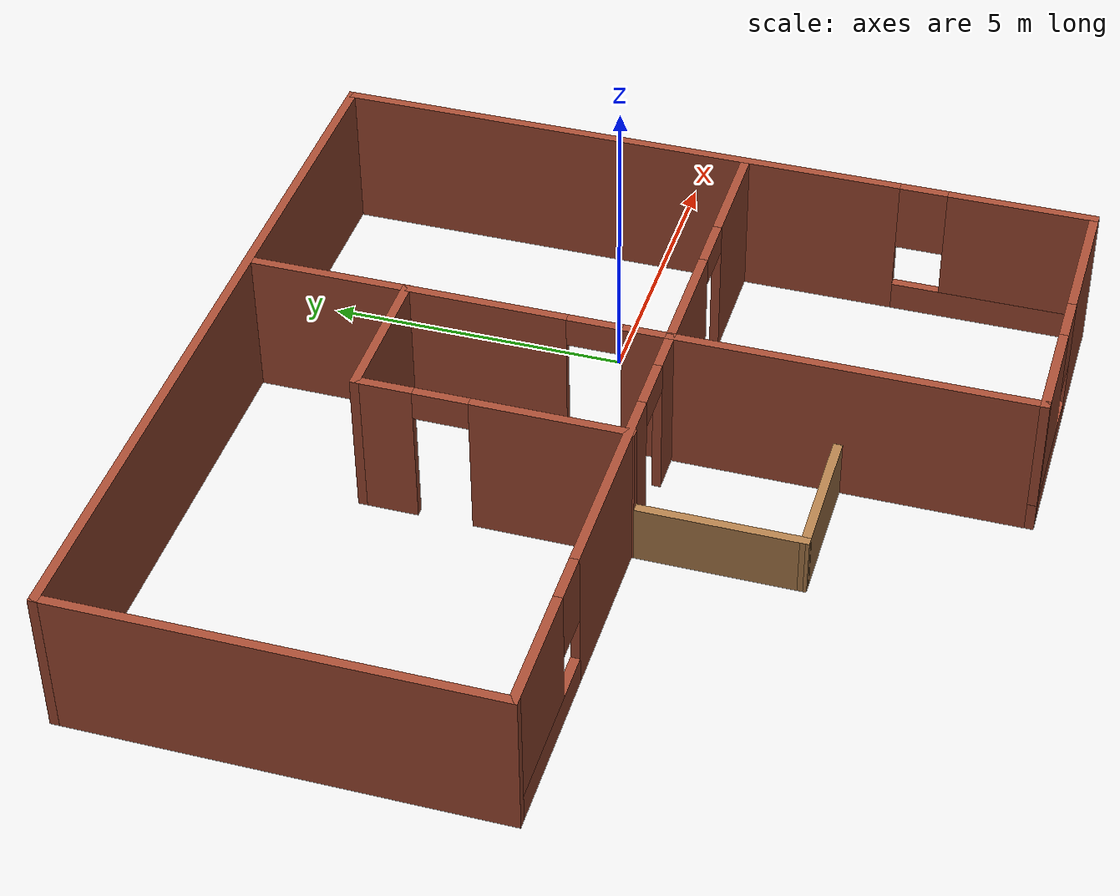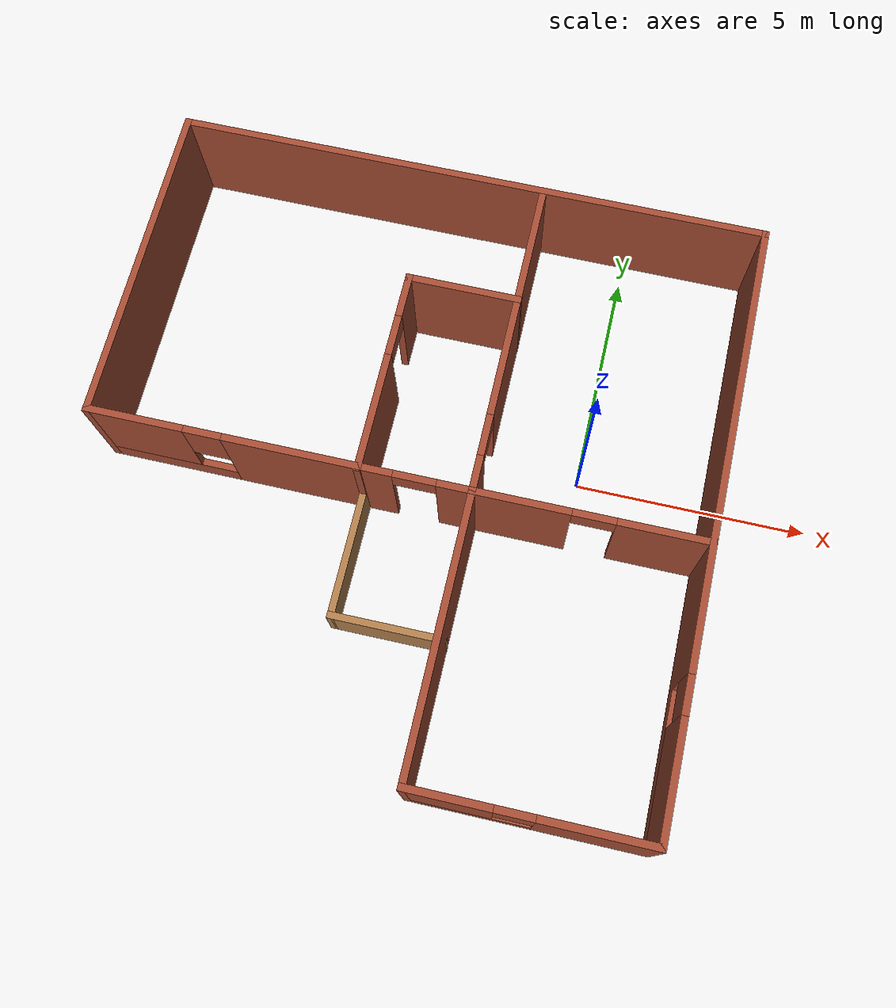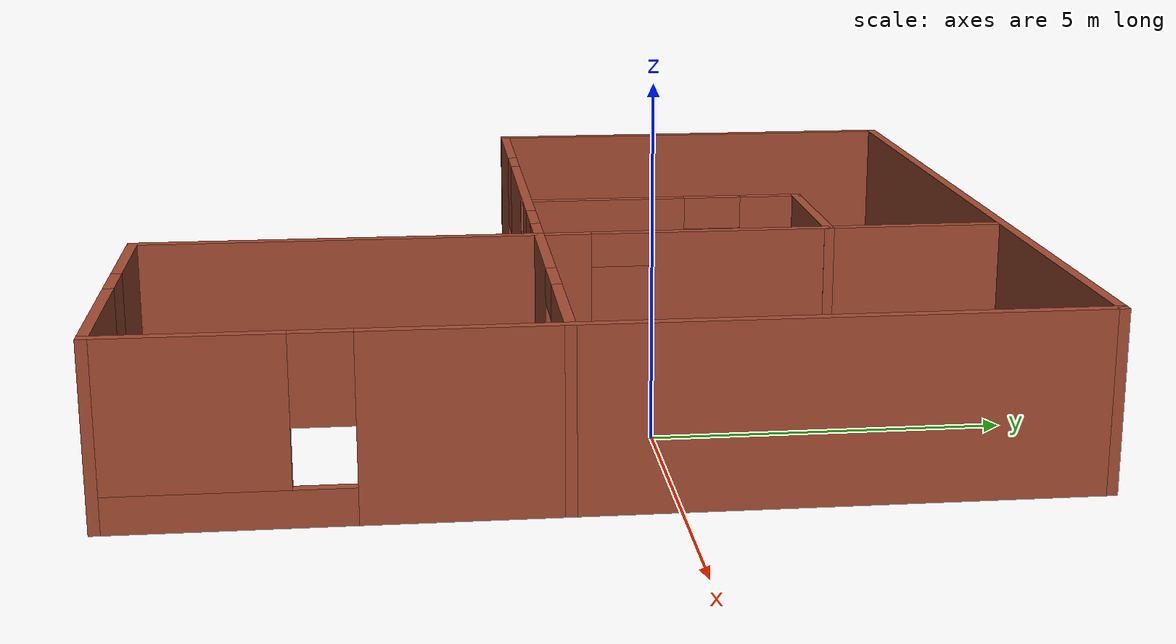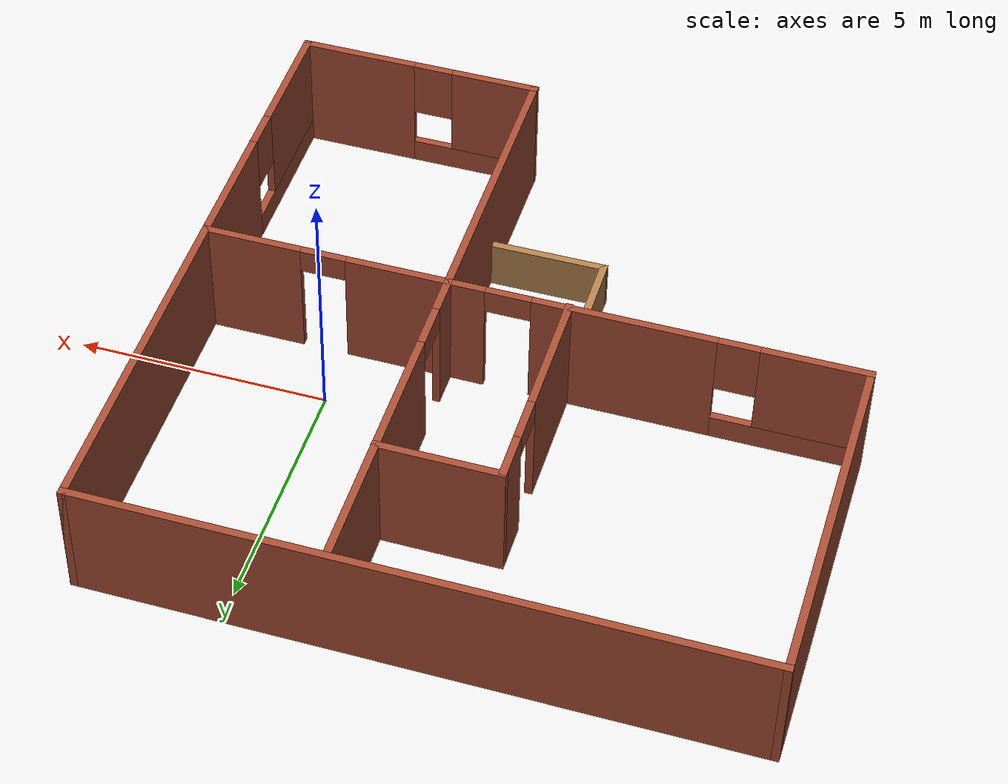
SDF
<?xml version='1.0'?>
<sdf version='1.6'>
  <model name='building'>
    <pose frame=''>-3.6315 -0.82297 0 0 -0 0</pose>
    <link name='Wall_0'>
      <collision name='Wall_0_Collision'>
        <geometry>
          <box>
            <size>13.0353 0.15 2.5</size>
          </box>
        </geometry>
        <pose frame=''>0 0 1.25 0 -0 0</pose>
      </collision>
      <visual name='Wall_0_Visual'>
        <pose frame=''>0 0 1.25 0 -0 0</pose>
        <geometry>
          <box>
            <size>13.0353 0.15 2.5</size>
          </box>
        </geometry>
        <material>
          <script>
            <uri>file://media/materials/scripts/gazebo.material</uri>
            <name>Gazebo/Bricks</name>
          </script>
          <ambient>1 1 1 1</ambient>
        </material>
      </visual>
      <pose frame=''>0 6.42497 0 0 -0 0</pose>
    </link>
    <link name='Wall_1'>
      <pose frame=''>6.4425 -3e-05 0 0 0 -1.5708</pose>
      <visual name='Wall_1_Visual_0'>
        <pose frame=''>-1.64549 0 1.25 0 -0 0</pose>
        <geometry>
          <box>
            <size>9.70902 0.15 2.5</size>
          </box>
        </geometry>
        <material>
          <script>
            <uri>file://media/materials/scripts/gazebo.material</uri>
            <name>Gazebo/Bricks</name>
          </script>
          <ambient>1 1 1 1</ambient>
        </material>
      </visual>
      <collision name='Wall_1_Collision_0'>
        <geometry>
          <box>
            <size>9.70902 0.15 2.5</size>
          </box>
        </geometry>
        <pose frame=''>-1.64549 0 1.25 0 -0 0</pose>
      </collision>
      <visual name='Wall_1_Visual_1'>
        <pose frame=''>4.85451 0 0.25 0 -0 0</pose>
        <geometry>
          <box>
            <size>3.29098 0.15 0.5</size>
          </box>
        </geometry>
        <material>
          <script>
            <uri>file://media/materials/scripts/gazebo.material</uri>
            <name>Gazebo/Bricks</name>
          </script>
          <ambient>1 1 1 1</ambient>
        </material>
      </visual>
      <collision name='Wall_1_Collision_1'>
        <geometry>
          <box>
            <size>3.29098 0.15 0.5</size>
          </box>
        </geometry>
        <pose frame=''>4.85451 0 0.25 0 -0 0</pose>
      </collision>
      <visual name='Wall_1_Visual_2'>
        <pose frame=''>5.25451 0 1.5 0 -0 0</pose>
        <geometry>
          <box>
            <size>2.49098 0.15 2</size>
          </box>
        </geometry>
        <material>
          <script>
            <uri>file://media/materials/scripts/gazebo.material</uri>
            <name>Gazebo/Bricks</name>
          </script>
          <ambient>1 1 1 1</ambient>
        </material>
      </visual>
      <collision name='Wall_1_Collision_2'>
        <geometry>
          <box>
            <size>2.49098 0.15 2</size>
          </box>
        </geometry>
        <pose frame=''>5.25451 0 1.5 0 -0 0</pose>
      </collision>
      <visual name='Wall_1_Visual_3'>
        <pose frame=''>3.60902 0 1.9 0 -0 0</pose>
        <geometry>
          <box>
            <size>0.8 0.15 1.2</size>
          </box>
        </geometry>
        <material>
          <script>
            <uri>file://media/materials/scripts/gazebo.material</uri>
            <name>Gazebo/Bricks</name>
          </script>
          <ambient>1 1 1 1</ambient>
        </material>
      </visual>
      <collision name='Wall_1_Collision_3'>
        <geometry>
          <box>
            <size>0.8 0.15 1.2</size>
          </box>
        </geometry>
        <pose frame=''>3.60902 0 1.9 0 -0 0</pose>
      </collision>
    </link>
    <link name='Wall_11'>
      <pose frame=''>4.0175 -0.57503 0 0 -0 0</pose>
      <visual name='Wall_11_Visual_0'>
        <pose frame=''>-1.45098 0 1.25 0 -0 0</pose>
        <geometry>
          <box>
            <size>2.09803 0.15 2.5</size>
          </box>
        </geometry>
        <material>
          <script>
            <uri>file://media/materials/scripts/gazebo.material</uri>
            <name>Gazebo/Bricks</name>
          </script>
          <ambient>1 1 1 1</ambient>
        </material>
      </visual>
      <collision name='Wall_11_Collision_0'>
        <geometry>
          <box>
            <size>2.09803 0.15 2.5</size>
          </box>
        </geometry>
        <pose frame=''>-1.45098 0 1.25 0 -0 0</pose>
      </collision>
      <visual name='Wall_11_Visual_1'>
        <pose frame=''>1.49902 0 1.25 0 -0 0</pose>
        <geometry>
          <box>
            <size>2.00197 0.15 2.5</size>
          </box>
        </geometry>
        <material>
          <script>
            <uri>file://media/materials/scripts/gazebo.material</uri>
            <name>Gazebo/Bricks</name>
          </script>
          <ambient>1 1 1 1</ambient>
        </material>
      </visual>
      <collision name='Wall_11_Collision_1'>
        <geometry>
          <box>
            <size>2.00197 0.15 2.5</size>
          </box>
        </geometry>
        <pose frame=''>1.49902 0 1.25 0 -0 0</pose>
      </collision>
      <visual name='Wall_11_Visual_2'>
        <pose frame=''>0.048032 0 2.25 0 -0 0</pose>
        <geometry>
          <box>
            <size>0.9 0.15 0.5</size>
          </box>
        </geometry>
        <material>
          <script>
            <uri>file://media/materials/scripts/gazebo.material</uri>
            <name>Gazebo/Bricks</name>
          </script>
          <ambient>1 1 1 1</ambient>
        </material>
      </visual>
      <collision name='Wall_11_Collision_2'>
        <geometry>
          <box>
            <size>0.9 0.15 0.5</size>
          </box>
        </geometry>
        <pose frame=''>0.048032 0 2.25 0 -0 0</pose>
      </collision>
    </link>
    <link name='Wall_13'>
      <pose frame=''>1.5925 2.84997 0 0 -0 1.5708</pose>
      <visual name='Wall_13_Visual_0'>
        <pose frame=''>-3.07947 0 1.25 0 -0 0</pose>
        <geometry>
          <box>
            <size>0.841068 0.15 2.5</size>
          </box>
        </geometry>
        <material>
          <script>
            <uri>file://media/materials/scripts/gazebo.material</uri>
            <name>Gazebo/Bricks</name>
          </script>
          <ambient>1 1 1 1</ambient>
        </material>
      </visual>
      <collision name='Wall_13_Collision_0'>
        <geometry>
          <box>
            <size>0.841068 0.15 2.5</size>
          </box>
        </geometry>
        <pose frame=''>-3.07947 0 1.25 0 -0 0</pose>
      </collision>
      <visual name='Wall_13_Visual_1'>
        <pose frame=''>0.870534 0 1.25 0 -0 0</pose>
        <geometry>
          <box>
            <size>5.25893 0.15 2.5</size>
          </box>
        </geometry>
        <material>
          <script>
            <uri>file://media/materials/scripts/gazebo.material</uri>
            <name>Gazebo/Bricks</name>
          </script>
          <ambient>1 1 1 1</ambient>
        </material>
      </visual>
      <collision name='Wall_13_Collision_1'>
        <geometry>
          <box>
            <size>5.25893 0.15 2.5</size>
          </box>
        </geometry>
        <pose frame=''>0.870534 0 1.25 0 -0 0</pose>
      </collision>
      <visual name='Wall_13_Visual_2'>
        <pose frame=''>-2.20893 0 2.25 0 -0 0</pose>
        <geometry>
          <box>
            <size>0.9 0.15 0.5</size>
          </box>
        </geometry>
        <material>
          <script>
            <uri>file://media/materials/scripts/gazebo.material</uri>
            <name>Gazebo/Bricks</name>
          </script>
          <ambient>1 1 1 1</ambient>
        </material>
      </visual>
      <collision name='Wall_13_Collision_2'>
        <geometry>
          <box>
            <size>0.9 0.15 0.5</size>
          </box>
        </geometry>
        <pose frame=''>-2.20893 0 2.25 0 -0 0</pose>
      </collision>
    </link>
    <link name='Wall_15'>
      <collision name='Wall_15_Collision'>
        <geometry>
          <box>
            <size>2.5 0.15 2.5</size>
          </box>
        </geometry>
        <pose frame=''>0 0 1.25 0 -0 0</pose>
      </collision>
      <visual name='Wall_15_Visual'>
        <pose frame=''>0 0 1.25 0 -0 0</pose>
        <geometry>
          <box>
            <size>2.5 0.15 2.5</size>
          </box>
        </geometry>
        <material>
          <script>
            <uri>file://media/materials/scripts/gazebo.material</uri>
            <name>Gazebo/Bricks</name>
          </script>
          <ambient>1 1 1 1</ambient>
        </material>
      </visual>
      <pose frame=''>0.422381 3.74812 0 0 -0 3.14159</pose>
    </link>
    <link name='Wall_17'>
      <collision name='Wall_17_Collision'>
        <geometry>
          <box>
            <size>2.50013 0.15 1</size>
          </box>
        </geometry>
        <pose frame=''>0 0 0.5 0 -0 0</pose>
      </collision>
      <visual name='Wall_17_Visual'>
        <pose frame=''>0 0 0.5 0 -0 0</pose>
        <geometry>
          <box>
            <size>2.50013 0.15 1</size>
          </box>
        </geometry>
        <material>
          <script>
            <uri>file://media/materials/scripts/gazebo.material</uri>
            <name>Gazebo/Wood</name>
          </script>
          <ambient>1 1 1 1</ambient>
        </material>
      </visual>
      <pose frame=''>0.4225 -3.33303 0 0 -0 0.003404</pose>
    </link>
    <link name='Wall_19'>
      <pose frame=''>-0.752559 1.57305 0 0 0 -1.57077</pose>
      <visual name='Wall_19_Visual_0'>
        <pose frame=''>-1.75247 0 1.25 0 -0 0</pose>
        <geometry>
          <box>
            <size>0.995058 0.15 2.5</size>
          </box>
        </geometry>
        <material>
          <script>
            <uri>file://media/materials/scripts/gazebo.material</uri>
            <name>Gazebo/Bricks</name>
          </script>
          <ambient>1 1 1 1</ambient>
        </material>
      </visual>
      <collision name='Wall_19_Collision_0'>
        <geometry>
          <box>
            <size>0.995058 0.15 2.5</size>
          </box>
        </geometry>
        <pose frame=''>-1.75247 0 1.25 0 -0 0</pose>
      </collision>
      <visual name='Wall_19_Visual_1'>
        <pose frame=''>0.947529 0 1.25 0 -0 0</pose>
        <geometry>
          <box>
            <size>2.60494 0.15 2.5</size>
          </box>
        </geometry>
        <material>
          <script>
            <uri>file://media/materials/scripts/gazebo.material</uri>
            <name>Gazebo/Bricks</name>
          </script>
          <ambient>1 1 1 1</ambient>
        </material>
      </visual>
      <collision name='Wall_19_Collision_1'>
        <geometry>
          <box>
            <size>2.60494 0.15 2.5</size>
          </box>
        </geometry>
        <pose frame=''>0.947529 0 1.25 0 -0 0</pose>
      </collision>
      <visual name='Wall_19_Visual_2'>
        <pose frame=''>-0.804942 0 2.25 0 -0 0</pose>
        <geometry>
          <box>
            <size>0.9 0.15 0.5</size>
          </box>
        </geometry>
        <material>
          <script>
            <uri>file://media/materials/scripts/gazebo.material</uri>
            <name>Gazebo/Bricks</name>
          </script>
          <ambient>1 1 1 1</ambient>
        </material>
      </visual>
      <collision name='Wall_19_Collision_2'>
        <geometry>
          <box>
            <size>0.9 0.15 0.5</size>
          </box>
        </geometry>
        <pose frame=''>-0.804942 0 2.25 0 -0 0</pose>
      </collision>
    </link>
    <link name='Wall_21'>
      <collision name='Wall_21_Collision'>
        <geometry>
          <box>
            <size>2.88479 0.15 1</size>
          </box>
        </geometry>
        <pose frame=''>0 0 0.5 0 -0 0</pose>
      </collision>
      <visual name='Wall_21_Visual'>
        <pose frame=''>0 0 0.5 0 -0 0</pose>
        <geometry>
          <box>
            <size>2.88479 0.15 1</size>
          </box>
        </geometry>
        <material>
          <script>
            <uri>file://media/materials/scripts/gazebo.material</uri>
            <name>Gazebo/Wood</name>
          </script>
          <ambient>1 1 1 1</ambient>
        </material>
      </visual>
      <pose frame=''>-0.7525 -1.96953 0 0 0 -1.5708</pose>
    </link>
    <link name='Wall_3'>
      <pose frame=''>4.0175 -6.42503 0 0 -0 3.14159</pose>
      <visual name='Wall_3_Visual_0'>
        <pose frame=''>-1.29912 0 1.25 0 -0 0</pose>
        <geometry>
          <box>
            <size>2.40177 0.15 2.5</size>
          </box>
        </geometry>
        <material>
          <script>
            <uri>file://media/materials/scripts/gazebo.material</uri>
            <name>Gazebo/Bricks</name>
          </script>
          <ambient>1 1 1 1</ambient>
        </material>
      </visual>
      <collision name='Wall_3_Collision_0'>
        <geometry>
          <box>
            <size>2.40177 0.15 2.5</size>
          </box>
        </geometry>
        <pose frame=''>-1.29912 0 1.25 0 -0 0</pose>
      </collision>
      <visual name='Wall_3_Visual_1'>
        <pose frame=''>1.20088 0 0.25 0 -0 0</pose>
        <geometry>
          <box>
            <size>2.59823 0.15 0.5</size>
          </box>
        </geometry>
        <material>
          <script>
            <uri>file://media/materials/scripts/gazebo.material</uri>
            <name>Gazebo/Bricks</name>
          </script>
          <ambient>1 1 1 1</ambient>
        </material>
      </visual>
      <collision name='Wall_3_Collision_1'>
        <geometry>
          <box>
            <size>2.59823 0.15 0.5</size>
          </box>
        </geometry>
        <pose frame=''>1.20088 0 0.25 0 -0 0</pose>
      </collision>
      <visual name='Wall_3_Visual_2'>
        <pose frame=''>1.60088 0 1.5 0 -0 0</pose>
        <geometry>
          <box>
            <size>1.79823 0.15 2</size>
          </box>
        </geometry>
        <material>
          <script>
            <uri>file://media/materials/scripts/gazebo.material</uri>
            <name>Gazebo/Bricks</name>
          </script>
          <ambient>1 1 1 1</ambient>
        </material>
      </visual>
      <collision name='Wall_3_Collision_2'>
        <geometry>
          <box>
            <size>1.79823 0.15 2</size>
          </box>
        </geometry>
        <pose frame=''>1.60088 0 1.5 0 -0 0</pose>
      </collision>
      <visual name='Wall_3_Visual_3'>
        <pose frame=''>0.301769 0 1.9 0 -0 0</pose>
        <geometry>
          <box>
            <size>0.8 0.15 1.2</size>
          </box>
        </geometry>
        <material>
          <script>
            <uri>file://media/materials/scripts/gazebo.material</uri>
            <name>Gazebo/Bricks</name>
          </script>
          <ambient>1 1 1 1</ambient>
        </material>
      </visual>
      <collision name='Wall_3_Collision_3'>
        <geometry>
          <box>
            <size>0.8 0.15 1.2</size>
          </box>
        </geometry>
        <pose frame=''>0.301769 0 1.9 0 -0 0</pose>
      </collision>
    </link>
    <link name='Wall_5'>
      <collision name='Wall_5_Collision'>
        <geometry>
          <box>
            <size>6 0.15 2.5</size>
          </box>
        </geometry>
        <pose frame=''>0 0 1.25 0 -0 0</pose>
      </collision>
      <visual name='Wall_5_Visual'>
        <pose frame=''>0 0 1.25 0 -0 0</pose>
        <geometry>
          <box>
            <size>6 0.15 2.5</size>
          </box>
        </geometry>
        <material>
          <script>
            <uri>file://media/materials/scripts/gazebo.material</uri>
            <name>Gazebo/Bricks</name>
          </script>
          <ambient>1 1 1 1</ambient>
        </material>
      </visual>
      <pose frame=''>1.5925 -3.50003 0 0 -0 1.5708</pose>
    </link>
    <link name='Wall_7'>
      <pose frame=''>-2.425 -0.57503 0 0 -0 3.14159</pose>
      <visual name='Wall_7_Visual_0'>
        <pose frame=''>-3.6888 0 1.25 0 -0 0</pose>
        <geometry>
          <box>
            <size>0.807391 0.15 2.5</size>
          </box>
        </geometry>
        <material>
          <script>
            <uri>file://media/materials/scripts/gazebo.material</uri>
            <name>Gazebo/Bricks</name>
          </script>
          <ambient>1 1 1 1</ambient>
        </material>
      </visual>
      <collision name='Wall_7_Collision_0'>
        <geometry>
          <box>
            <size>0.807391 0.15 2.5</size>
          </box>
        </geometry>
        <pose frame=''>-3.6888 0 1.25 0 -0 0</pose>
      </collision>
      <visual name='Wall_7_Visual_1'>
        <pose frame=''>-0.606361 0 1.25 0 -0 0</pose>
        <geometry>
          <box>
            <size>3.55749 0.15 2.5</size>
          </box>
        </geometry>
        <material>
          <script>
            <uri>file://media/materials/scripts/gazebo.material</uri>
            <name>Gazebo/Bricks</name>
          </script>
          <ambient>1 1 1 1</ambient>
        </material>
      </visual>
      <collision name='Wall_7_Collision_1'>
        <geometry>
          <box>
            <size>3.55749 0.15 2.5</size>
          </box>
        </geometry>
        <pose frame=''>-0.606361 0 1.25 0 -0 0</pose>
      </collision>
      <visual name='Wall_7_Visual_2'>
        <pose frame=''>2.63244 0 0.25 0 -0 0</pose>
        <geometry>
          <box>
            <size>2.92011 0.15 0.5</size>
          </box>
        </geometry>
        <material>
          <script>
            <uri>file://media/materials/scripts/gazebo.material</uri>
            <name>Gazebo/Bricks</name>
          </script>
          <ambient>1 1 1 1</ambient>
        </material>
      </visual>
      <collision name='Wall_7_Collision_2'>
        <geometry>
          <box>
            <size>2.92011 0.15 0.5</size>
          </box>
        </geometry>
        <pose frame=''>2.63244 0 0.25 0 -0 0</pose>
      </collision>
      <visual name='Wall_7_Visual_3'>
        <pose frame=''>3.03244 0 1.5 0 -0 0</pose>
        <geometry>
          <box>
            <size>2.12011 0.15 2</size>
          </box>
        </geometry>
        <material>
          <script>
            <uri>file://media/materials/scripts/gazebo.material</uri>
            <name>Gazebo/Bricks</name>
          </script>
          <ambient>1 1 1 1</ambient>
        </material>
      </visual>
      <collision name='Wall_7_Collision_3'>
        <geometry>
          <box>
            <size>2.12011 0.15 2</size>
          </box>
        </geometry>
        <pose frame=''>3.03244 0 1.5 0 -0 0</pose>
      </collision>
      <visual name='Wall_7_Visual_4'>
        <pose frame=''>1.57239 0 1.9 0 -0 0</pose>
        <geometry>
          <box>
            <size>0.8 0.15 1.2</size>
          </box>
        </geometry>
        <material>
          <script>
            <uri>file://media/materials/scripts/gazebo.material</uri>
            <name>Gazebo/Bricks</name>
          </script>
          <ambient>1 1 1 1</ambient>
        </material>
      </visual>
      <collision name='Wall_7_Collision_4'>
        <geometry>
          <box>
            <size>0.8 0.15 1.2</size>
          </box>
        </geometry>
        <pose frame=''>1.57239 0 1.9 0 -0 0</pose>
      </collision>
      <visual name='Wall_7_Visual_5'>
        <pose frame=''>-2.83511 0 2.25 0 -0 0</pose>
        <geometry>
          <box>
            <size>0.9 0.15 0.5</size>
          </box>
        </geometry>
        <material>
          <script>
            <uri>file://media/materials/scripts/gazebo.material</uri>
            <name>Gazebo/Bricks</name>
          </script>
          <ambient>1 1 1 1</ambient>
        </material>
      </visual>
      <collision name='Wall_7_Collision_5'>
        <geometry>
          <box>
            <size>0.9 0.15 0.5</size>
          </box>
        </geometry>
        <pose frame=''>-2.83511 0 2.25 0 -0 0</pose>
      </collision>
    </link>
    <link name='Wall_9'>
      <collision name='Wall_9_Collision'>
        <geometry>
          <box>
            <size>7.15012 0.15 2.5</size>
          </box>
        </geometry>
        <pose frame=''>0 0 1.25 0 -0 0</pose>
      </collision>
      <visual name='Wall_9_Visual'>
        <pose frame=''>0 0 1.25 0 -0 0</pose>
        <geometry>
          <box>
            <size>7.15012 0.15 2.5</size>
          </box>
        </geometry>
        <material>
          <script>
            <uri>file://media/materials/scripts/gazebo.material</uri>
            <name>Gazebo/Bricks</name>
          </script>
          <ambient>1 1 1 1</ambient>
        </material>
      </visual>
      <pose frame=''>-6.4425 2.92497 0 0 0 -1.5708</pose>
    </link>
    <static>1</static>
  </model>
</sdf>
